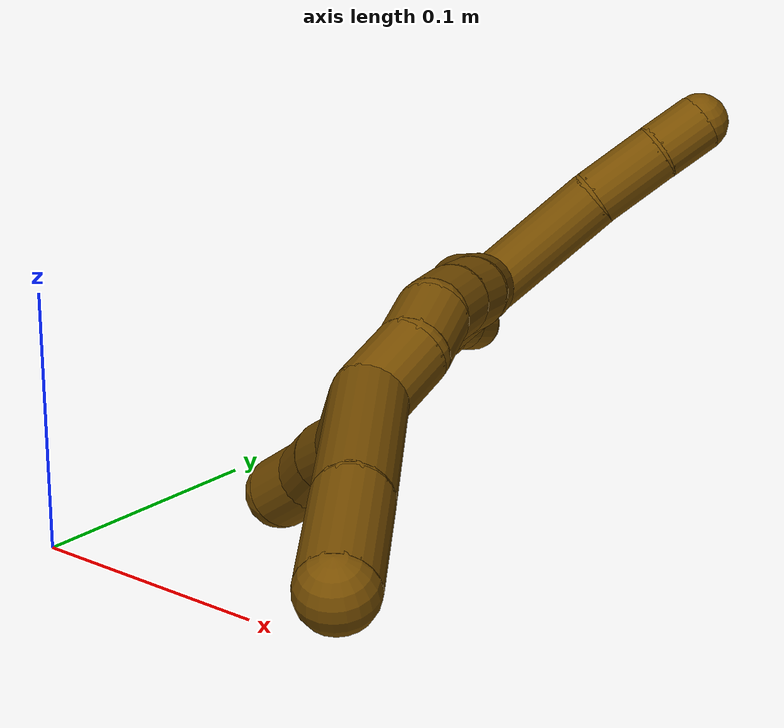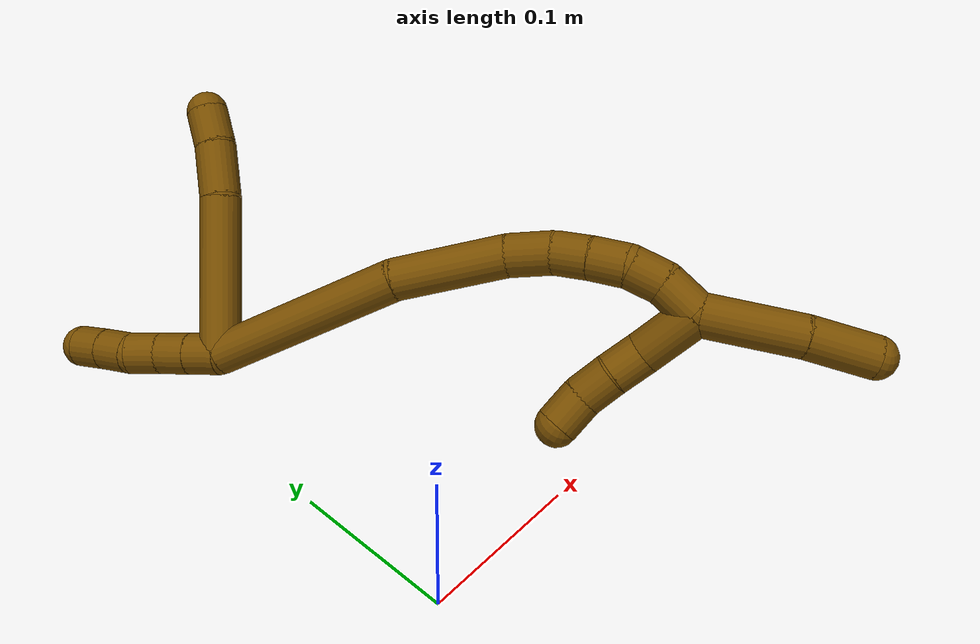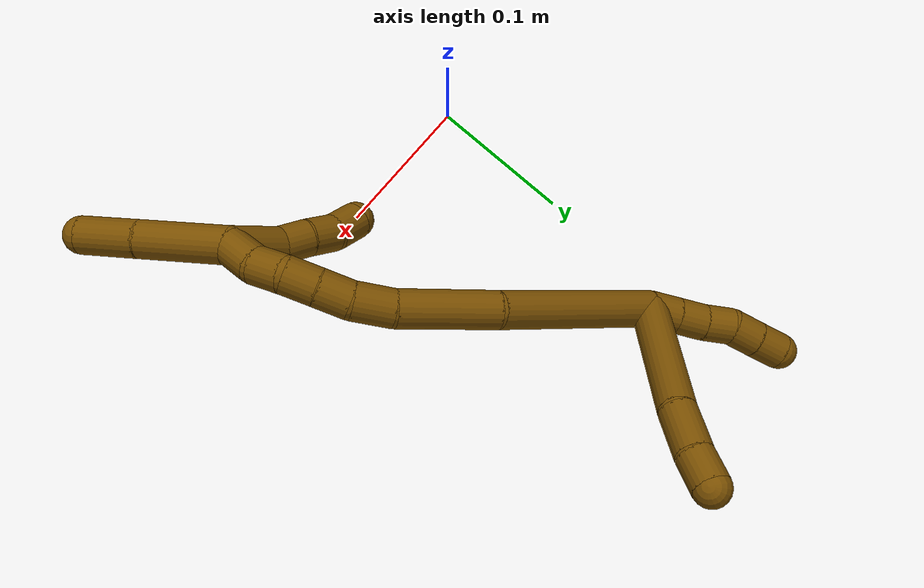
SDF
<sdf version="1.7">
 <world name="default">
  <model name="photoneo_s_sensor">
   <static>1</static>
   <pose>0 0 2 1.57079 1.57079 3.14159</pose>
   <link name="link">
    <inertial><mass>0.1</mass></inertial>
    <sensor name="sensor" type="depth">
     <update_rate>30</update_rate>
     <camera>
      <horizontal_fov>1.22</horizontal_fov>
      <image><width>1920</width><height>1200</height><format>B8G8R8</format></image>
      <clip><near>0.1</near><far>4</far></clip>
      <depth_camera><output>points</output></depth_camera>
     </camera>
     <plugin name="camera_plugin" filename="libgazebo_ros_depth_camera.so">
      <baseline>0.2</baseline>
      <alwaysOn>1</alwaysOn>
      <updateRate>0.0</updateRate>
      <cameraName>camera_ir</cameraName>
      <imageTopicName>/camera/color/image_raw</imageTopicName>
      <cameraInfoTopicName>/camera/color/camera_info</cameraInfoTopicName>
      <depthImageTopicName>/camera/depth/image_raw</depthImageTopicName>
      <depthImageCameraInfoTopicName>/camera/depth/camera_info</depthImageCameraInfoTopicName>
      <pointCloudTopicName>/camera/depth/points</pointCloudTopicName>
      <frameName>fr_optical</frameName>
      <pointCloudCutoff>0.1</pointCloudCutoff>
      <pointCloudCutoffMax>2.0</pointCloudCutoffMax>
      <distortionK1>0</distortionK1>
      <distortionK2>0</distortionK2>
      <distortionK3>0</distortionK3>
      <distortionT1>0</distortionT1>
      <distortionT2>0</distortionT2>
      <CxPrime>0</CxPrime>
      <Cx>0</Cx>
      <Cy>0</Cy>
      <focalLength>0</focalLength>
      <hackBaseline>0</hackBaseline>
     </plugin>
    </sensor>
   </link>
  </model>
  <model name="bin">
   <static>1</static>
   <link name="bottom">
    <collision name="collision-bottom">
     <pose>0 0 -0.01 0 -0 0</pose>
     <geometry><box><size>0.8 0.6 0.02</size></box></geometry>
     <surface>
      <friction><ode><mu>100</mu><mu2>100</mu2></ode></friction>
      <contact><collide_bitmask>65535</collide_bitmask></contact>
     </surface>
    </collision>
   </link>
   <link name="west_wall">
    <collision name="collision-west_wall">
     <pose>-0.41 0 0.1 0 -0 0</pose>
     <geometry><box><size>0.02 0.6 0.2</size></box></geometry>
     <surface>
      <friction><ode><mu>100</mu><mu2>100</mu2></ode></friction>
      <contact><collide_bitmask>65535</collide_bitmask></contact>
     </surface>
    </collision>
   </link>
   <link name="east_wall">
    <collision name="collision-east_wall">
     <pose>0.41 0 0.1 0 -0 0</pose>
     <geometry><box><size>0.02 0.6 0.2</size></box></geometry>
     <surface>
      <friction><ode><mu>100</mu><mu2>100</mu2></ode></friction>
      <contact><collide_bitmask>65535</collide_bitmask></contact>
     </surface>
    </collision>
   </link>
   <link name="south_wall">
    <collision name="collision-south_wall">
     <pose>0 -0.31 0.1 0 -0 0</pose>
     <geometry><box><size>0.8 0.02 0.2</size></box></geometry>
     <surface>
      <friction><ode><mu>100</mu><mu2>100</mu2></ode></friction>
      <contact><collide_bitmask>65535</collide_bitmask></contact>
     </surface>
    </collision>
   </link>
   <link name="north_wall">
    <collision name="collision-north_wall">
     <pose>0 0.31 0.1 0 -0 0</pose>
     <geometry><box><size>0.8 0.02 0.2</size></box></geometry>
     <surface>
      <friction><ode><mu>100</mu><mu2>100</mu2></ode></friction>
      <contact><collide_bitmask>65535</collide_bitmask></contact>
     </surface>
    </collision>
   </link>
  </model>
  <model name="12">
   <static>0</static>
   <link name="12">
    <collision name="collision-cylinder-e_1_2_8">
     <pose>-0.038954 -0.007695 -0.025087 2.84396 -0.977992 -2.59231</pose>
     <geometry><cylinder><radius>0.0125</radius><length>0.093937</length></cylinder></geometry>
     <surface>
      <friction><ode><mu>1.16</mu><mu2>1.16</mu2><slip1>0</slip1><slip2>0</slip2></ode></friction>
      <contact><ode><kp>1e+06</kp><kd>1</kd><max_vel>0</max_vel><min_depth>0.001</min_depth></ode></contact>
     </surface>
    </collision>
    <visual name="visual-cylinder-e_1_2_8">
     <pose>-0.038954 -0.007695 -0.025087 2.84396 -0.977992 -2.59231</pose>
     <geometry><cylinder><radius>0.0125</radius><length>0.093937</length></cylinder></geometry>
     <material><ambient>0.466667 0.301961 0 1</ambient></material>
    </visual>
    <collision name="collision-cylinder-e_2_8_9">
     <pose>-0.092913 -0.01739 -0.056855 2.85086 -1.13573 -2.69044</pose>
     <geometry><cylinder><radius>0.0125</radius><length>0.033091</length></cylinder></geometry>
     <surface>
      <friction><ode><mu>1.16</mu><mu2>1.16</mu2><slip1>0</slip1><slip2>0</slip2></ode></friction>
      <contact><ode><kp>1e+06</kp><kd>1</kd><max_vel>0</max_vel><min_depth>0.001</min_depth></ode></contact>
     </surface>
    </collision>
    <visual name="visual-cylinder-e_2_8_9">
     <pose>-0.092913 -0.01739 -0.056855 2.85086 -1.13573 -2.69044</pose>
     <geometry><cylinder><radius>0.0125</radius><length>0.033091</length></cylinder></geometry>
     <material><ambient>0.466667 0.301961 0 1</ambient></material>
    </visual>
    <collision name="collision-cylinder-e_3_9_6">
     <pose>-0.118856 -0.019797 -0.067015 3.02483 -1.26087 -2.98175</pose>
     <geometry><cylinder><radius>0.0125</radius><length>0.022973</length></cylinder></geometry>
     <surface>
      <friction><ode><mu>1.16</mu><mu2>1.16</mu2><slip1>0</slip1><slip2>0</slip2></ode></friction>
      <contact><ode><kp>1e+06</kp><kd>1</kd><max_vel>0</max_vel><min_depth>0.001</min_depth></ode></contact>
     </surface>
    </collision>
    <visual name="visual-cylinder-e_3_9_6">
     <pose>-0.118856 -0.019797 -0.067015 3.02483 -1.26087 -2.98175</pose>
     <geometry><cylinder><radius>0.0125</radius><length>0.022973</length></cylinder></geometry>
     <material><ambient>0.466667 0.301961 0 1</ambient></material>
    </visual>
    <collision name="collision-cylinder-e_1_2_10">
     <pose>-0.005467 0.00611 0.005725 -0.817911 -0.578415 0.256495</pose>
     <geometry><cylinder><radius>0.0125</radius><length>0.02</length></cylinder></geometry>
     <surface>
      <friction><ode><mu>1.16</mu><mu2>1.16</mu2><slip1>0</slip1><slip2>0</slip2></ode></friction>
      <contact><ode><kp>1e+06</kp><kd>1</kd><max_vel>0</max_vel><min_depth>0.001</min_depth></ode></contact>
     </surface>
    </collision>
    <visual name="visual-cylinder-e_1_2_10">
     <pose>-0.005467 0.00611 0.005725 -0.817911 -0.578415 0.256495</pose>
     <geometry><cylinder><radius>0.0125</radius><length>0.02</length></cylinder></geometry>
     <material><ambient>0.466667 0.301961 0 1</ambient></material>
    </visual>
    <collision name="collision-cylinder-e_2_10_11">
     <pose>-0.01647 0.018314 0.017127 -0.820786 -0.586659 0.261339</pose>
     <geometry><cylinder><radius>0.0125</radius><length>0.02</length></cylinder></geometry>
     <surface>
      <friction><ode><mu>1.16</mu><mu2>1.16</mu2><slip1>0</slip1><slip2>0</slip2></ode></friction>
      <contact><ode><kp>1e+06</kp><kd>1</kd><max_vel>0</max_vel><min_depth>0.001</min_depth></ode></contact>
     </surface>
    </collision>
    <visual name="visual-cylinder-e_2_10_11">
     <pose>-0.01647 0.018314 0.017127 -0.820786 -0.586659 0.261339</pose>
     <geometry><cylinder><radius>0.0125</radius><length>0.02</length></cylinder></geometry>
     <material><ambient>0.466667 0.301961 0 1</ambient></material>
    </visual>
    <collision name="collision-cylinder-e_3_11_12">
     <pose>-0.027017 0.031382 0.027926 -0.937372 -0.524864 0.270361</pose>
     <geometry><cylinder><radius>0.0125</radius><length>0.02</length></cylinder></geometry>
     <surface>
      <friction><ode><mu>1.16</mu><mu2>1.16</mu2><slip1>0</slip1><slip2>0</slip2></ode></friction>
      <contact><ode><kp>1e+06</kp><kd>1</kd><max_vel>0</max_vel><min_depth>0.001</min_depth></ode></contact>
     </surface>
    </collision>
    <visual name="visual-cylinder-e_3_11_12">
     <pose>-0.027017 0.031382 0.027926 -0.937372 -0.524864 0.270361</pose>
     <geometry><cylinder><radius>0.0125</radius><length>0.02</length></cylinder></geometry>
     <material><ambient>0.466667 0.301961 0 1</ambient></material>
    </visual>
    <collision name="collision-cylinder-e_4_12_13">
     <pose>-0.03882 0.042756 0.038924 -0.642686 -0.746711 0.259334</pose>
     <geometry><cylinder><radius>0.0125</radius><length>0.02</length></cylinder></geometry>
     <surface>
      <friction><ode><mu>1.16</mu><mu2>1.16</mu2><slip1>0</slip1><slip2>0</slip2></ode></friction>
      <contact><ode><kp>1e+06</kp><kd>1</kd><max_vel>0</max_vel><min_depth>0.001</min_depth></ode></contact>
     </surface>
    </collision>
    <visual name="visual-cylinder-e_4_12_13">
     <pose>-0.03882 0.042756 0.038924 -0.642686 -0.746711 0.259334</pose>
     <geometry><cylinder><radius>0.0125</radius><length>0.02</length></cylinder></geometry>
     <material><ambient>0.466667 0.301961 0 1</ambient></material>
    </visual>
    <collision name="collision-cylinder-e_5_13_5">
     <pose>-0.052184 0.051574 0.050904 -0.626485 -0.717125 0.241594</pose>
     <geometry><cylinder><radius>0.0125</radius><length>0.02</length></cylinder></geometry>
     <surface>
      <friction><ode><mu>1.16</mu><mu2>1.16</mu2><slip1>0</slip1><slip2>0</slip2></ode></friction>
      <contact><ode><kp>1e+06</kp><kd>1</kd><max_vel>0</max_vel><min_depth>0.001</min_depth></ode></contact>
     </surface>
    </collision>
    <visual name="visual-cylinder-e_5_13_5">
     <pose>-0.052184 0.051574 0.050904 -0.626485 -0.717125 0.241594</pose>
     <geometry><cylinder><radius>0.0125</radius><length>0.02</length></cylinder></geometry>
     <material><ambient>0.466667 0.301961 0 1</ambient></material>
    </visual>
    <collision name="collision-cylinder-e_1_2_14">
     <pose>0.01312 -0.03708 -0.044379 2.44556 0.223095 0.598947</pose>
     <geometry><cylinder><radius>0.0125</radius><length>0.118602</length></cylinder></geometry>
     <surface>
      <friction><ode><mu>1.16</mu><mu2>1.16</mu2><slip1>0</slip1><slip2>0</slip2></ode></friction>
      <contact><ode><kp>1e+06</kp><kd>1</kd><max_vel>0</max_vel><min_depth>0.001</min_depth></ode></contact>
     </surface>
    </collision>
    <visual name="visual-cylinder-e_1_2_14">
     <pose>0.01312 -0.03708 -0.044379 2.44556 0.223095 0.598947</pose>
     <geometry><cylinder><radius>0.0125</radius><length>0.118602</length></cylinder></geometry>
     <material><ambient>0.466667 0.301961 0 1</ambient></material>
    </visual>
    <collision name="collision-cylinder-e_2_14_15">
     <pose>0.037616 -0.098167 -0.109072 2.27307 0.347077 0.722756</pose>
     <geometry><cylinder><radius>0.0125</radius><length>0.066884</length></cylinder></geometry>
     <surface>
      <friction><ode><mu>1.16</mu><mu2>1.16</mu2><slip1>0</slip1><slip2>0</slip2></ode></friction>
      <contact><ode><kp>1e+06</kp><kd>1</kd><max_vel>0</max_vel><min_depth>0.001</min_depth></ode></contact>
     </surface>
    </collision>
    <visual name="visual-cylinder-e_2_14_15">
     <pose>0.037616 -0.098167 -0.109072 2.27307 0.347077 0.722756</pose>
     <geometry><cylinder><radius>0.0125</radius><length>0.066884</length></cylinder></geometry>
     <material><ambient>0.466667 0.301961 0 1</ambient></material>
    </visual>
    <collision name="collision-cylinder-e_3_15_16">
     <pose>0.055737 -0.130769 -0.137194 2.30818 0.526267 1.09342</pose>
     <geometry><cylinder><radius>0.0125</radius><length>0.026859</length></cylinder></geometry>
     <surface>
      <friction><ode><mu>1.16</mu><mu2>1.16</mu2><slip1>0</slip1><slip2>0</slip2></ode></friction>
      <contact><ode><kp>1e+06</kp><kd>1</kd><max_vel>0</max_vel><min_depth>0.001</min_depth></ode></contact>
     </surface>
    </collision>
    <visual name="visual-cylinder-e_3_15_16">
     <pose>0.055737 -0.130769 -0.137194 2.30818 0.526267 1.09342</pose>
     <geometry><cylinder><radius>0.0125</radius><length>0.026859</length></cylinder></geometry>
     <material><ambient>0.466667 0.301961 0 1</ambient></material>
    </visual>
    <collision name="collision-cylinder-e_4_16_17">
     <pose>0.069782 -0.145155 -0.150336 2.31535 0.747625 1.45992</pose>
     <geometry><cylinder><radius>0.0125</radius><length>0.021471</length></cylinder></geometry>
     <surface>
      <friction><ode><mu>1.16</mu><mu2>1.16</mu2><slip1>0</slip1><slip2>0</slip2></ode></friction>
      <contact><ode><kp>1e+06</kp><kd>1</kd><max_vel>0</max_vel><min_depth>0.001</min_depth></ode></contact>
     </surface>
    </collision>
    <visual name="visual-cylinder-e_4_16_17">
     <pose>0.069782 -0.145155 -0.150336 2.31535 0.747625 1.45992</pose>
     <geometry><cylinder><radius>0.0125</radius><length>0.021471</length></cylinder></geometry>
     <material><ambient>0.466667 0.301961 0 1</ambient></material>
    </visual>
    <collision name="collision-cylinder-e_5_17_18">
     <pose>0.084655 -0.156959 -0.160287 2.22544 0.784837 1.39665</pose>
     <geometry><cylinder><radius>0.0125</radius><length>0.021433</length></cylinder></geometry>
     <surface>
      <friction><ode><mu>1.16</mu><mu2>1.16</mu2><slip1>0</slip1><slip2>0</slip2></ode></friction>
      <contact><ode><kp>1e+06</kp><kd>1</kd><max_vel>0</max_vel><min_depth>0.001</min_depth></ode></contact>
     </surface>
    </collision>
    <visual name="visual-cylinder-e_5_17_18">
     <pose>0.084655 -0.156959 -0.160287 2.22544 0.784837 1.39665</pose>
     <geometry><cylinder><radius>0.0125</radius><length>0.021433</length></cylinder></geometry>
     <material><ambient>0.466667 0.301961 0 1</ambient></material>
    </visual>
    <collision name="collision-cylinder-e_6_18_19">
     <pose>0.100059 -0.169684 -0.165988 1.73095 0.855846 0.983599</pose>
     <geometry><cylinder><radius>0.0125</radius><length>0.020739</length></cylinder></geometry>
     <surface>
      <friction><ode><mu>1.16</mu><mu2>1.16</mu2><slip1>0</slip1><slip2>0</slip2></ode></friction>
      <contact><ode><kp>1e+06</kp><kd>1</kd><max_vel>0</max_vel><min_depth>0.001</min_depth></ode></contact>
     </surface>
    </collision>
    <visual name="visual-cylinder-e_6_18_19">
     <pose>0.100059 -0.169684 -0.165988 1.73095 0.855846 0.983599</pose>
     <geometry><cylinder><radius>0.0125</radius><length>0.020739</length></cylinder></geometry>
     <material><ambient>0.466667 0.301961 0 1</ambient></material>
    </visual>
    <collision name="collision-cylinder-e_7_19_1">
     <pose>0.11883 -0.181305 -0.166496 1.45395 1.14645 1.04245</pose>
     <geometry><cylinder><radius>0.0125</radius><length>0.024011</length></cylinder></geometry>
     <surface>
      <friction><ode><mu>1.16</mu><mu2>1.16</mu2><slip1>0</slip1><slip2>0</slip2></ode></friction>
      <contact><ode><kp>1e+06</kp><kd>1</kd><max_vel>0</max_vel><min_depth>0.001</min_depth></ode></contact>
     </surface>
    </collision>
    <visual name="visual-cylinder-e_7_19_1">
     <pose>0.11883 -0.181305 -0.166496 1.45395 1.14645 1.04245</pose>
     <geometry><cylinder><radius>0.0125</radius><length>0.024011</length></cylinder></geometry>
     <material><ambient>0.466667 0.301961 0 1</ambient></material>
    </visual>
    <collision name="collision-cylinder-e_1_1_20">
     <pose>0.146487 -0.209925 -0.172503 1.84161 0.596701 0.768833</pose>
     <geometry><cylinder><radius>0.0125</radius><length>0.059498</length></cylinder></geometry>
     <surface>
      <friction><ode><mu>1.16</mu><mu2>1.16</mu2><slip1>0</slip1><slip2>0</slip2></ode></friction>
      <contact><ode><kp>1e+06</kp><kd>1</kd><max_vel>0</max_vel><min_depth>0.001</min_depth></ode></contact>
     </surface>
    </collision>
    <visual name="visual-cylinder-e_1_1_20">
     <pose>0.146487 -0.209925 -0.172503 1.84161 0.596701 0.768833</pose>
     <geometry><cylinder><radius>0.0125</radius><length>0.059498</length></cylinder></geometry>
     <material><ambient>0.466667 0.301961 0 1</ambient></material>
    </visual>
    <collision name="collision-cylinder-e_2_20_4">
     <pose>0.175099 -0.249803 -0.181783 1.73609 0.627825 0.732039</pose>
     <geometry><cylinder><radius>0.0125</radius><length>0.040502</length></cylinder></geometry>
     <surface>
      <friction><ode><mu>1.16</mu><mu2>1.16</mu2><slip1>0</slip1><slip2>0</slip2></ode></friction>
      <contact><ode><kp>1e+06</kp><kd>1</kd><max_vel>0</max_vel><min_depth>0.001</min_depth></ode></contact>
     </surface>
    </collision>
    <visual name="visual-cylinder-e_2_20_4">
     <pose>0.175099 -0.249803 -0.181783 1.73609 0.627825 0.732039</pose>
     <geometry><cylinder><radius>0.0125</radius><length>0.040502</length></cylinder></geometry>
     <material><ambient>0.466667 0.301961 0 1</ambient></material>
    </visual>
    <collision name="collision-cylinder-e_1_1_21">
     <pose>0.12899 -0.177809 -0.149377 -0.470095 -0.042042 0.010069</pose>
     <geometry><cylinder><radius>0.0125</radius><length>0.037144</length></cylinder></geometry>
     <surface>
      <friction><ode><mu>1.16</mu><mu2>1.16</mu2><slip1>0</slip1><slip2>0</slip2></ode></friction>
      <contact><ode><kp>1e+06</kp><kd>1</kd><max_vel>0</max_vel><min_depth>0.001</min_depth></ode></contact>
     </surface>
    </collision>
    <visual name="visual-cylinder-e_1_1_21">
     <pose>0.12899 -0.177809 -0.149377 -0.470095 -0.042042 0.010069</pose>
     <geometry><cylinder><radius>0.0125</radius><length>0.037144</length></cylinder></geometry>
     <material><ambient>0.466667 0.301961 0 1</ambient></material>
    </visual>
    <collision name="collision-cylinder-e_2_21_22">
     <pose>0.128821 -0.162184 -0.125297 -0.763883 0.058563 -0.023528</pose>
     <geometry><cylinder><radius>0.0125</radius><length>0.020911</length></cylinder></geometry>
     <surface>
      <friction><ode><mu>1.16</mu><mu2>1.16</mu2><slip1>0</slip1><slip2>0</slip2></ode></friction>
      <contact><ode><kp>1e+06</kp><kd>1</kd><max_vel>0</max_vel><min_depth>0.001</min_depth></ode></contact>
     </surface>
    </collision>
    <visual name="visual-cylinder-e_2_21_22">
     <pose>0.128821 -0.162184 -0.125297 -0.763883 0.058563 -0.023528</pose>
     <geometry><cylinder><radius>0.0125</radius><length>0.020911</length></cylinder></geometry>
     <material><ambient>0.466667 0.301961 0 1</ambient></material>
    </visual>
    <collision name="collision-cylinder-e_3_22_23">
     <pose>0.12994 -0.148787 -0.109415 -0.637242 0.048814 -0.016105</pose>
     <geometry><cylinder><radius>0.0125</radius><length>0.020788</length></cylinder></geometry>
     <surface>
      <friction><ode><mu>1.16</mu><mu2>1.16</mu2><slip1>0</slip1><slip2>0</slip2></ode></friction>
      <contact><ode><kp>1e+06</kp><kd>1</kd><max_vel>0</max_vel><min_depth>0.001</min_depth></ode></contact>
     </surface>
    </collision>
    <visual name="visual-cylinder-e_3_22_23">
     <pose>0.12994 -0.148787 -0.109415 -0.637242 0.048814 -0.016105</pose>
     <geometry><cylinder><radius>0.0125</radius><length>0.020788</length></cylinder></geometry>
     <material><ambient>0.466667 0.301961 0 1</ambient></material>
    </visual>
    <collision name="collision-cylinder-e_4_23_3">
     <pose>0.133596 -0.135946 -0.093482 -0.720582 0.3022 -0.114598</pose>
     <geometry><cylinder><radius>0.0125</radius><length>0.021157</length></cylinder></geometry>
     <surface>
      <friction><ode><mu>1.16</mu><mu2>1.16</mu2><slip1>0</slip1><slip2>0</slip2></ode></friction>
      <contact><ode><kp>1e+06</kp><kd>1</kd><max_vel>0</max_vel><min_depth>0.001</min_depth></ode></contact>
     </surface>
    </collision>
    <visual name="visual-cylinder-e_4_23_3">
     <pose>0.133596 -0.135946 -0.093482 -0.720582 0.3022 -0.114598</pose>
     <geometry><cylinder><radius>0.0125</radius><length>0.021157</length></cylinder></geometry>
     <material><ambient>0.466667 0.301961 0 1</ambient></material>
    </visual>
    <collision name="collision-sphere-3">
     <pose>0.136744 -0.129283 -0.085893 0 -0 0</pose>
     <geometry><sphere><radius>0.0125</radius></sphere></geometry>
     <surface>
      <friction><ode><mu>1.16</mu><mu2>1.16</mu2><slip1>0</slip1><slip2>0</slip2></ode></friction>
      <contact><ode><kp>1e+06</kp><kd>1</kd><max_vel>0</max_vel><min_depth>0.001</min_depth></ode></contact>
     </surface>
    </collision>
    <visual name="visual-sphere-3">
     <pose>0.136744 -0.129283 -0.085893 0 -0 0</pose>
     <geometry><sphere><radius>0.0125</radius></sphere></geometry>
     <material><ambient>0.466667 0.301961 0 1</ambient></material>
    </visual>
    <collision name="collision-sphere-23">
     <pose>0.130448 -0.14261 -0.101071 0 -0 0</pose>
     <geometry><sphere><radius>0.0125</radius></sphere></geometry>
     <surface>
      <friction><ode><mu>1.16</mu><mu2>1.16</mu2><slip1>0</slip1><slip2>0</slip2></ode></friction>
      <contact><ode><kp>1e+06</kp><kd>1</kd><max_vel>0</max_vel><min_depth>0.001</min_depth></ode></contact>
     </surface>
    </collision>
    <visual name="visual-sphere-23">
     <pose>0.130448 -0.14261 -0.101071 0 -0 0</pose>
     <geometry><sphere><radius>0.0125</radius></sphere></geometry>
     <material><ambient>0.466667 0.301961 0 1</ambient></material>
    </visual>
    <collision name="collision-sphere-22">
     <pose>0.129433 -0.154964 -0.117759 0 -0 0</pose>
     <geometry><sphere><radius>0.0125</radius></sphere></geometry>
     <surface>
      <friction><ode><mu>1.16</mu><mu2>1.16</mu2><slip1>0</slip1><slip2>0</slip2></ode></friction>
      <contact><ode><kp>1e+06</kp><kd>1</kd><max_vel>0</max_vel><min_depth>0.001</min_depth></ode></contact>
     </surface>
    </collision>
    <visual name="visual-sphere-22">
     <pose>0.129433 -0.154964 -0.117759 0 -0 0</pose>
     <geometry><sphere><radius>0.0125</radius></sphere></geometry>
     <material><ambient>0.466667 0.301961 0 1</ambient></material>
    </visual>
    <collision name="collision-sphere-21">
     <pose>0.128209 -0.169404 -0.132834 0 -0 0</pose>
     <geometry><sphere><radius>0.0125</radius></sphere></geometry>
     <surface>
      <friction><ode><mu>1.16</mu><mu2>1.16</mu2><slip1>0</slip1><slip2>0</slip2></ode></friction>
      <contact><ode><kp>1e+06</kp><kd>1</kd><max_vel>0</max_vel><min_depth>0.001</min_depth></ode></contact>
     </surface>
    </collision>
    <visual name="visual-sphere-21">
     <pose>0.128209 -0.169404 -0.132834 0 -0 0</pose>
     <geometry><sphere><radius>0.0125</radius></sphere></geometry>
     <material><ambient>0.466667 0.301961 0 1</ambient></material>
    </visual>
    <collision name="collision-sphere-4">
     <pose>0.186994 -0.265968 -0.18448 0 -0 0</pose>
     <geometry><sphere><radius>0.0125</radius></sphere></geometry>
     <surface>
      <friction><ode><mu>1.16</mu><mu2>1.16</mu2><slip1>0</slip1><slip2>0</slip2></ode></friction>
      <contact><ode><kp>1e+06</kp><kd>1</kd><max_vel>0</max_vel><min_depth>0.001</min_depth></ode></contact>
     </surface>
    </collision>
    <visual name="visual-sphere-4">
     <pose>0.186994 -0.265968 -0.18448 0 -0 0</pose>
     <geometry><sphere><radius>0.0125</radius></sphere></geometry>
     <material><ambient>0.466667 0.301961 0 1</ambient></material>
    </visual>
    <collision name="collision-sphere-20">
     <pose>0.163203 -0.233637 -0.179086 0 -0 0</pose>
     <geometry><sphere><radius>0.0125</radius></sphere></geometry>
     <surface>
      <friction><ode><mu>1.16</mu><mu2>1.16</mu2><slip1>0</slip1><slip2>0</slip2></ode></friction>
      <contact><ode><kp>1e+06</kp><kd>1</kd><max_vel>0</max_vel><min_depth>0.001</min_depth></ode></contact>
     </surface>
    </collision>
    <visual name="visual-sphere-20">
     <pose>0.163203 -0.233637 -0.179086 0 -0 0</pose>
     <geometry><sphere><radius>0.0125</radius></sphere></geometry>
     <material><ambient>0.466667 0.301961 0 1</ambient></material>
    </visual>
    <collision name="collision-sphere-11">
     <pose>-0.022006 0.024407 0.022804 0 -0 0</pose>
     <geometry><sphere><radius>0.0125</radius></sphere></geometry>
     <surface>
      <friction><ode><mu>1.16</mu><mu2>1.16</mu2><slip1>0</slip1><slip2>0</slip2></ode></friction>
      <contact><ode><kp>1e+06</kp><kd>1</kd><max_vel>0</max_vel><min_depth>0.001</min_depth></ode></contact>
     </surface>
    </collision>
    <visual name="visual-sphere-11">
     <pose>-0.022006 0.024407 0.022804 0 -0 0</pose>
     <geometry><sphere><radius>0.0125</radius></sphere></geometry>
     <material><ambient>0.466667 0.301961 0 1</ambient></material>
    </visual>
    <collision name="collision-sphere-10">
     <pose>-0.010934 0.01222 0.01145 0 -0 0</pose>
     <geometry><sphere><radius>0.0125</radius></sphere></geometry>
     <surface>
      <friction><ode><mu>1.16</mu><mu2>1.16</mu2><slip1>0</slip1><slip2>0</slip2></ode></friction>
      <contact><ode><kp>1e+06</kp><kd>1</kd><max_vel>0</max_vel><min_depth>0.001</min_depth></ode></contact>
     </surface>
    </collision>
    <visual name="visual-sphere-10">
     <pose>-0.010934 0.01222 0.01145 0 -0 0</pose>
     <geometry><sphere><radius>0.0125</radius></sphere></geometry>
     <material><ambient>0.466667 0.301961 0 1</ambient></material>
    </visual>
    <collision name="collision-sphere-6">
     <pose>-0.129795 -0.020205 -0.070494 0 -0 0</pose>
     <geometry><sphere><radius>0.0125</radius></sphere></geometry>
     <surface>
      <friction><ode><mu>1.16</mu><mu2>1.16</mu2><slip1>0</slip1><slip2>0</slip2></ode></friction>
      <contact><ode><kp>1e+06</kp><kd>1</kd><max_vel>0</max_vel><min_depth>0.001</min_depth></ode></contact>
     </surface>
    </collision>
    <visual name="visual-sphere-6">
     <pose>-0.129795 -0.020205 -0.070494 0 -0 0</pose>
     <geometry><sphere><radius>0.0125</radius></sphere></geometry>
     <material><ambient>0.466667 0.301961 0 1</ambient></material>
    </visual>
    <collision name="collision-sphere-9">
     <pose>-0.107917 -0.019389 -0.063535 0 -0 0</pose>
     <geometry><sphere><radius>0.0125</radius></sphere></geometry>
     <surface>
      <friction><ode><mu>1.16</mu><mu2>1.16</mu2><slip1>0</slip1><slip2>0</slip2></ode></friction>
      <contact><ode><kp>1e+06</kp><kd>1</kd><max_vel>0</max_vel><min_depth>0.001</min_depth></ode></contact>
     </surface>
    </collision>
    <visual name="visual-sphere-9">
     <pose>-0.107917 -0.019389 -0.063535 0 -0 0</pose>
     <geometry><sphere><radius>0.0125</radius></sphere></geometry>
     <material><ambient>0.466667 0.301961 0 1</ambient></material>
    </visual>
    <collision name="collision-sphere-2">
     <geometry><sphere><radius>0.0125</radius></sphere></geometry>
     <surface>
      <friction><ode><mu>1.16</mu><mu2>1.16</mu2><slip1>0</slip1><slip2>0</slip2></ode></friction>
      <contact><ode><kp>1e+06</kp><kd>1</kd><max_vel>0</max_vel><min_depth>0.001</min_depth></ode></contact>
     </surface>
    </collision>
    <visual name="visual-sphere-2">
     <geometry><sphere><radius>0.0125</radius></sphere></geometry>
     <material><ambient>0.466667 0.301961 0 1</ambient></material>
    </visual>
    <collision name="collision-sphere-19">
     <pose>0.107889 -0.176395 -0.167072 0 -0 0</pose>
     <geometry><sphere><radius>0.0125</radius></sphere></geometry>
     <surface>
      <friction><ode><mu>1.16</mu><mu2>1.16</mu2><slip1>0</slip1><slip2>0</slip2></ode></friction>
      <contact><ode><kp>1e+06</kp><kd>1</kd><max_vel>0</max_vel><min_depth>0.001</min_depth></ode></contact>
     </surface>
    </collision>
    <visual name="visual-sphere-19">
     <pose>0.107889 -0.176395 -0.167072 0 -0 0</pose>
     <geometry><sphere><radius>0.0125</radius></sphere></geometry>
     <material><ambient>0.466667 0.301961 0 1</ambient></material>
    </visual>
    <collision name="collision-sphere-8">
     <pose>-0.077909 -0.015391 -0.050174 0 -0 0</pose>
     <geometry><sphere><radius>0.0125</radius></sphere></geometry>
     <surface>
      <friction><ode><mu>1.16</mu><mu2>1.16</mu2><slip1>0</slip1><slip2>0</slip2></ode></friction>
      <contact><ode><kp>1e+06</kp><kd>1</kd><max_vel>0</max_vel><min_depth>0.001</min_depth></ode></contact>
     </surface>
    </collision>
    <visual name="visual-sphere-8">
     <pose>-0.077909 -0.015391 -0.050174 0 -0 0</pose>
     <geometry><sphere><radius>0.0125</radius></sphere></geometry>
     <material><ambient>0.466667 0.301961 0 1</ambient></material>
    </visual>
    <collision name="collision-sphere-12">
     <pose>-0.032027 0.038357 0.033049 0 -0 0</pose>
     <geometry><sphere><radius>0.0125</radius></sphere></geometry>
     <surface>
      <friction><ode><mu>1.16</mu><mu2>1.16</mu2><slip1>0</slip1><slip2>0</slip2></ode></friction>
      <contact><ode><kp>1e+06</kp><kd>1</kd><max_vel>0</max_vel><min_depth>0.001</min_depth></ode></contact>
     </surface>
    </collision>
    <visual name="visual-sphere-12">
     <pose>-0.032027 0.038357 0.033049 0 -0 0</pose>
     <geometry><sphere><radius>0.0125</radius></sphere></geometry>
     <material><ambient>0.466667 0.301961 0 1</ambient></material>
    </visual>
    <collision name="collision-sphere-13">
     <pose>-0.045612 0.047155 0.044799 0 -0 0</pose>
     <geometry><sphere><radius>0.0125</radius></sphere></geometry>
     <surface>
      <friction><ode><mu>1.16</mu><mu2>1.16</mu2><slip1>0</slip1><slip2>0</slip2></ode></friction>
      <contact><ode><kp>1e+06</kp><kd>1</kd><max_vel>0</max_vel><min_depth>0.001</min_depth></ode></contact>
     </surface>
    </collision>
    <visual name="visual-sphere-13">
     <pose>-0.045612 0.047155 0.044799 0 -0 0</pose>
     <geometry><sphere><radius>0.0125</radius></sphere></geometry>
     <material><ambient>0.466667 0.301961 0 1</ambient></material>
    </visual>
    <collision name="collision-sphere-5">
     <pose>-0.058756 0.055993 0.05701 0 -0 0</pose>
     <geometry><sphere><radius>0.0125</radius></sphere></geometry>
     <surface>
      <friction><ode><mu>1.16</mu><mu2>1.16</mu2><slip1>0</slip1><slip2>0</slip2></ode></friction>
      <contact><ode><kp>1e+06</kp><kd>1</kd><max_vel>0</max_vel><min_depth>0.001</min_depth></ode></contact>
     </surface>
    </collision>
    <visual name="visual-sphere-5">
     <pose>-0.058756 0.055993 0.05701 0 -0 0</pose>
     <geometry><sphere><radius>0.0125</radius></sphere></geometry>
     <material><ambient>0.466667 0.301961 0 1</ambient></material>
    </visual>
    <collision name="collision-sphere-14">
     <pose>0.026241 -0.074161 -0.088759 0 -0 0</pose>
     <geometry><sphere><radius>0.0125</radius></sphere></geometry>
     <surface>
      <friction><ode><mu>1.16</mu><mu2>1.16</mu2><slip1>0</slip1><slip2>0</slip2></ode></friction>
      <contact><ode><kp>1e+06</kp><kd>1</kd><max_vel>0</max_vel><min_depth>0.001</min_depth></ode></contact>
     </surface>
    </collision>
    <visual name="visual-sphere-14">
     <pose>0.026241 -0.074161 -0.088759 0 -0 0</pose>
     <geometry><sphere><radius>0.0125</radius></sphere></geometry>
     <material><ambient>0.466667 0.301961 0 1</ambient></material>
    </visual>
    <collision name="collision-sphere-15">
     <pose>0.048991 -0.122174 -0.129386 0 -0 0</pose>
     <geometry><sphere><radius>0.0125</radius></sphere></geometry>
     <surface>
      <friction><ode><mu>1.16</mu><mu2>1.16</mu2><slip1>0</slip1><slip2>0</slip2></ode></friction>
      <contact><ode><kp>1e+06</kp><kd>1</kd><max_vel>0</max_vel><min_depth>0.001</min_depth></ode></contact>
     </surface>
    </collision>
    <visual name="visual-sphere-15">
     <pose>0.048991 -0.122174 -0.129386 0 -0 0</pose>
     <geometry><sphere><radius>0.0125</radius></sphere></geometry>
     <material><ambient>0.466667 0.301961 0 1</ambient></material>
    </visual>
    <collision name="collision-sphere-16">
     <pose>0.062483 -0.139365 -0.145002 0 -0 0</pose>
     <geometry><sphere><radius>0.0125</radius></sphere></geometry>
     <surface>
      <friction><ode><mu>1.16</mu><mu2>1.16</mu2><slip1>0</slip1><slip2>0</slip2></ode></friction>
      <contact><ode><kp>1e+06</kp><kd>1</kd><max_vel>0</max_vel><min_depth>0.001</min_depth></ode></contact>
     </surface>
    </collision>
    <visual name="visual-sphere-16">
     <pose>0.062483 -0.139365 -0.145002 0 -0 0</pose>
     <geometry><sphere><radius>0.0125</radius></sphere></geometry>
     <material><ambient>0.466667 0.301961 0 1</ambient></material>
    </visual>
    <collision name="collision-sphere-17">
     <pose>0.077081 -0.150944 -0.155671 0 -0 0</pose>
     <geometry><sphere><radius>0.0125</radius></sphere></geometry>
     <surface>
      <friction><ode><mu>1.16</mu><mu2>1.16</mu2><slip1>0</slip1><slip2>0</slip2></ode></friction>
      <contact><ode><kp>1e+06</kp><kd>1</kd><max_vel>0</max_vel><min_depth>0.001</min_depth></ode></contact>
     </surface>
    </collision>
    <visual name="visual-sphere-17">
     <pose>0.077081 -0.150944 -0.155671 0 -0 0</pose>
     <geometry><sphere><radius>0.0125</radius></sphere></geometry>
     <material><ambient>0.466667 0.301961 0 1</ambient></material>
    </visual>
    <collision name="collision-sphere-18">
     <pose>0.092228 -0.162973 -0.164904 0 -0 0</pose>
     <geometry><sphere><radius>0.0125</radius></sphere></geometry>
     <surface>
      <friction><ode><mu>1.16</mu><mu2>1.16</mu2><slip1>0</slip1><slip2>0</slip2></ode></friction>
      <contact><ode><kp>1e+06</kp><kd>1</kd><max_vel>0</max_vel><min_depth>0.001</min_depth></ode></contact>
     </surface>
    </collision>
    <visual name="visual-sphere-18">
     <pose>0.092228 -0.162973 -0.164904 0 -0 0</pose>
     <geometry><sphere><radius>0.0125</radius></sphere></geometry>
     <material><ambient>0.466667 0.301961 0 1</ambient></material>
    </visual>
    <collision name="collision-sphere-1">
     <pose>0.12977 -0.186214 -0.16592 0 -0 0</pose>
     <geometry><sphere><radius>0.0125</radius></sphere></geometry>
     <surface>
      <friction><ode><mu>1.16</mu><mu2>1.16</mu2><slip1>0</slip1><slip2>0</slip2></ode></friction>
      <contact><ode><kp>1e+06</kp><kd>1</kd><max_vel>0</max_vel><min_depth>0.001</min_depth></ode></contact>
     </surface>
    </collision>
    <visual name="visual-sphere-1">
     <pose>0.12977 -0.186214 -0.16592 0 -0 0</pose>
     <geometry><sphere><radius>0.0125</radius></sphere></geometry>
     <material><ambient>0.466667 0.301961 0 1</ambient></material>
    </visual>
    <inertial>
     <pose>0.040489 -0.088203 -0.084479 0 -0 0</pose>
     <mass>0.75</mass>
     <inertia><ixx>0.00023</ixx><ixy>0</ixy><ixz>0</ixz><iyy>9.4e-05</iyy><iyz>0</iyz><izz>0.000137</izz></inertia>
    </inertial>
   </link>
   <pose>0.021782 0.19858 0.03563 2.8467 0.239329 -1.94883</pose>
  </model>
 </world>
</sdf>
